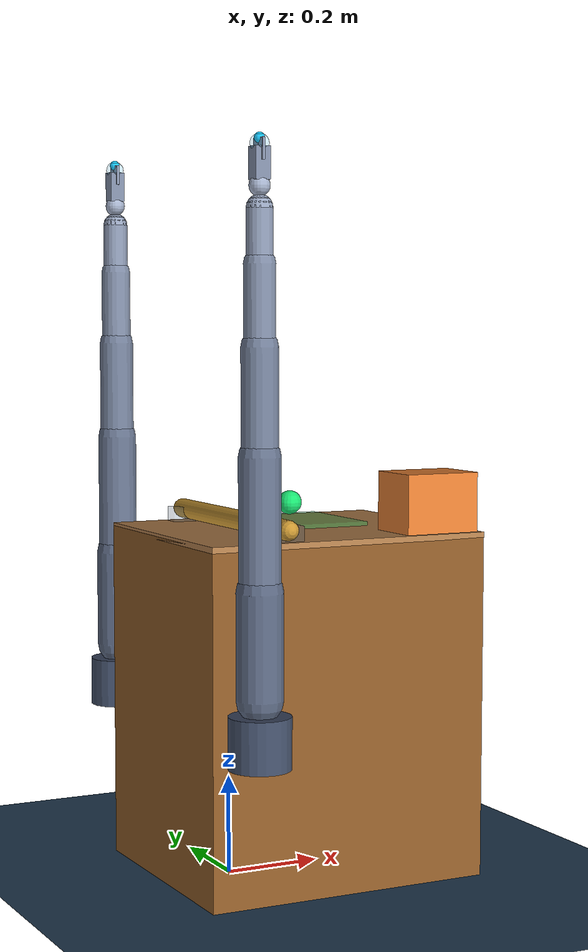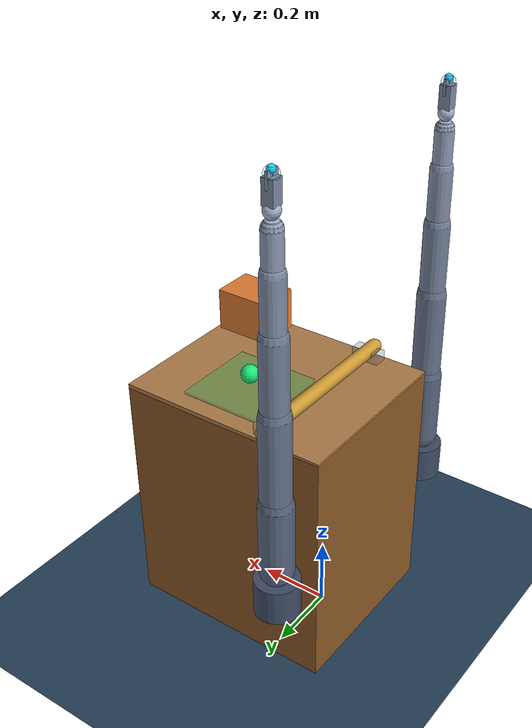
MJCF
<mujoco model="dual_arm_scene">
  <compiler angle="radian"/>

  <option timestep="0.002" gravity="0 0 -9.81" cone="elliptic" impratio="10" solver="Newton" iterations="100">
    <flag contact="enable"/>
  </option>

  <statistic center="0.3 0 0.9" extent="2.0" meansize="0.05"/>

  <visual>
    <global offwidth="640" offheight="480"/>
    <headlight diffuse="0.5 0.5 0.5" ambient="0.3 0.3 0.3" specular="0 0 0"/>
    <quality shadowsize="2048"/>
    <rgba haze="0.1 0.2 0.3 1"/>
  </visual>

  <asset>
    <texture type="skybox" builtin="gradient" rgb1="0.35 0.55 0.75" rgb2="0 0 0" width="512" height="3072"/>
    <texture type="2d" name="groundplane" builtin="checker" mark="edge" rgb1="0.2 0.3 0.4" rgb2="0.1 0.2 0.3" markrgb="0.8 0.8 0.8" width="300" height="300"/>
    <material name="groundplane" texture="groundplane" texuniform="true" texrepeat="5 5" reflectance="0.2"/>
  </asset>

  <worldbody>
    <!-- Two lights for even illumination -->
    <light name="overhead" directional="true" pos="0.3 0 3" dir="0 0 -1" diffuse="0.4 0.4 0.4"/>
    <light name="key" directional="true" pos="0 2 3" dir="0 -0.5 -1" diffuse="0.7 0.7 0.7"/>

    <!-- Floor -->
    <geom name="floor" type="plane" size="2 2 0.01" material="groundplane"/>

    <!-- Work table -->
    <body name="table" pos="0.15 0 0">
      <geom type="box" size="0.3 0.25 0.35" pos="0 0 0.35" rgba="0.55 0.35 0.15 1"/>
      <geom type="box" size="0.3 0.25 0.006" pos="0 0 0.70" rgba="0.7 0.5 0.3 1"/>
    </body>

    <!-- Overhead camera -->
    <body name="cam_mount" pos="0.0 0.75 1.7">
      <camera name="scene_camera" fovy="70" resolution="640 480" quat="0.00000000 -0.00000000 0.28845087 0.95749470"/>
    </body>

    <!-- Left arm (7-DoF) -->
    <body name="l_base" pos="-0.1 0.35 0.35">
      <geom type="cylinder" size="0.06 0.05" rgba="0.25 0.3 0.4 1"/>
      <body name="l_link1" pos="0 0 0.08">
        <joint name="l_j1" type="hinge" axis="0 0 1" range="-2.74 2.74" damping="2.0" armature="0.02"/>
        <geom type="capsule" size="0.045" fromto="0 0 0 0 0 0.20" rgba="0.35 0.4 0.5 1"/>
        <body name="l_link2" pos="0 0 0.20">
          <joint name="l_j2" type="hinge" axis="0 1 0" range="-1.78 1.78" damping="2.0" armature="0.02"/>
          <geom type="capsule" size="0.04" fromto="0 0 0 0 0 0.25" rgba="0.4 0.45 0.55 1"/>
          <body name="l_link3" pos="0 0 0.25">
            <joint name="l_j3" type="hinge" axis="0 0 1" range="-2.90 2.90" damping="2.0" armature="0.02"/>
            <geom type="capsule" size="0.035" fromto="0 0 0 0 0 0.20" rgba="0.45 0.5 0.6 1"/>
            <body name="l_link4" pos="0 0 0.20">
              <joint name="l_j4" type="hinge" axis="0 1 0" range="-3.04 -0.15" damping="2.0" armature="0.02"/>
              <geom type="capsule" size="0.03" fromto="0 0 0 0 0 0.15" rgba="0.5 0.55 0.65 1"/>
              <body name="l_link5" pos="0 0 0.15">
                <joint name="l_j5" type="hinge" axis="0 0 1" range="-2.80 2.80" damping="2.0" armature="0.02"/>
                <geom type="capsule" size="0.025" fromto="0 0 0 0 0 0.10" rgba="0.55 0.6 0.7 1"/>
                <body name="l_link6" pos="0 0 0.10">
                  <joint name="l_j6" type="hinge" axis="0 1 0" range="0.54 4.52" damping="2.0" armature="0.02"/>
                  <geom type="sphere" size="0.025" rgba="0.6 0.65 0.75 1"/>
                  <body name="l_link7" pos="0 0 0.04">
                    <joint name="l_j7" type="hinge" axis="0 0 1" range="-3.01 3.01" damping="2.0" armature="0.02"/>
                    <geom type="sphere" size="0.02" rgba="0.65 0.7 0.8 1"/>
                    <body name="l_gripper" pos="0 0 0.04">
                      <geom name="l_gripper_visual" type="box" size="0.015 0.015 0.03" rgba="0.5 0.55 0.65 1" contype="0" conaffinity="0"/>
                      <geom name="l_grasp_pad" type="sphere" pos="0 0 0.035" size="0.018" rgba="0.2 0.7 0.9 0.12" contype="0" conaffinity="0"/>
                      <body name="l_pinch" pos="0 0 0.045">
                        <site name="l_pinch_site" size="0.01" rgba="0.1 0.8 1 1"/>
                      </body>
                      <body name="l_finger_l" pos="0 0.01 0.025">
                        <joint name="l_grip_l" type="slide" axis="0 1 0" range="-0.015 0.015" damping="0.5" armature="0.005"/>
                        <geom type="box" size="0.003 0.008 0.02" rgba="0.55 0.6 0.7 1" condim="4" friction="0.95 0.3 0.1" solimp="0.998 0.998 0.001" solref="0.001 1"/>
                      </body>
                      <body name="l_finger_r" pos="0 -0.01 0.025">
                        <joint name="l_grip_r" type="slide" axis="0 1 0" range="-0.015 0.015" damping="0.5" armature="0.005"/>
                        <geom type="box" size="0.003 0.008 0.02" rgba="0.55 0.6 0.7 1" condim="4" friction="0.95 0.3 0.1" solimp="0.998 0.998 0.001" solref="0.001 1"/>
                      </body>
                    </body>
                  </body>
                </body>
              </body>
            </body>
          </body>
        </body>
      </body>
    </body>

    <!-- Right arm (7-DoF) -->
    <body name="r_base" pos="-0.1 -0.35 0.35">
      <geom type="cylinder" size="0.06 0.05" rgba="0.25 0.3 0.4 1"/>
      <body name="r_link1" pos="0 0 0.08">
        <joint name="r_j1" type="hinge" axis="0 0 1" range="-2.74 2.74" damping="2.0" armature="0.02"/>
        <geom type="capsule" size="0.045" fromto="0 0 0 0 0 0.20" rgba="0.35 0.4 0.5 1"/>
        <body name="r_link2" pos="0 0 0.20">
          <joint name="r_j2" type="hinge" axis="0 1 0" range="-1.78 1.78" damping="2.0" armature="0.02"/>
          <geom type="capsule" size="0.04" fromto="0 0 0 0 0 0.25" rgba="0.4 0.45 0.55 1"/>
          <body name="r_link3" pos="0 0 0.25">
            <joint name="r_j3" type="hinge" axis="0 0 1" range="-2.90 2.90" damping="2.0" armature="0.02"/>
            <geom type="capsule" size="0.035" fromto="0 0 0 0 0 0.20" rgba="0.45 0.5 0.6 1"/>
            <body name="r_link4" pos="0 0 0.20">
              <joint name="r_j4" type="hinge" axis="0 1 0" range="-3.04 -0.15" damping="2.0" armature="0.02"/>
              <geom type="capsule" size="0.03" fromto="0 0 0 0 0 0.15" rgba="0.5 0.55 0.65 1"/>
              <body name="r_link5" pos="0 0 0.15">
                <joint name="r_j5" type="hinge" axis="0 0 1" range="-2.80 2.80" damping="2.0" armature="0.02"/>
                <geom type="capsule" size="0.025" fromto="0 0 0 0 0 0.10" rgba="0.55 0.6 0.7 1"/>
                <body name="r_link6" pos="0 0 0.10">
                  <joint name="r_j6" type="hinge" axis="0 1 0" range="0.54 4.52" damping="2.0" armature="0.02"/>
                  <geom type="sphere" size="0.025" rgba="0.6 0.65 0.75 1"/>
                  <body name="r_link7" pos="0 0 0.04">
                    <joint name="r_j7" type="hinge" axis="0 0 1" range="-3.01 3.01" damping="2.0" armature="0.02"/>
                    <geom type="sphere" size="0.02" rgba="0.65 0.7 0.8 1"/>
                    <body name="r_gripper" pos="0 0 0.04">
                      <geom name="r_gripper_visual" type="box" size="0.015 0.015 0.03" rgba="0.5 0.55 0.65 1" contype="0" conaffinity="0"/>
                      <geom name="r_grasp_pad" type="sphere" pos="0 0 0.035" size="0.018" rgba="0.2 0.7 0.9 0.12" contype="0" conaffinity="0"/>
                      <body name="r_pinch" pos="0 0 0.045">
                        <site name="r_pinch_site" size="0.01" rgba="0.1 0.8 1 1"/>
                      </body>
                      <body name="r_finger_l" pos="0 0.01 0.025">
                        <joint name="r_grip_l" type="slide" axis="0 1 0" range="-0.015 0.015" damping="0.5" armature="0.005"/>
                        <geom type="box" size="0.003 0.008 0.02" rgba="0.55 0.6 0.7 1" condim="4" friction="0.95 0.3 0.1" solimp="0.998 0.998 0.001" solref="0.001 1"/>
                      </body>
                      <body name="r_finger_r" pos="0 -0.01 0.025">
                        <joint name="r_grip_r" type="slide" axis="0 1 0" range="-0.015 0.015" damping="0.5" armature="0.005"/>
                        <geom type="box" size="0.003 0.008 0.02" rgba="0.55 0.6 0.7 1" condim="4" friction="0.95 0.3 0.1" solimp="0.998 0.998 0.001" solref="0.001 1"/>
                      </body>
                    </body>
                  </body>
                </body>
              </body>
            </body>
          </body>
        </body>
      </body>
    </body>

    <!-- Objects for dual-arm tasks -->
    <body name="long_rod" pos="0.01 0 0.73">
      <freejoint name="rod_joint"/>
      <geom type="capsule" size="0.02" fromto="0 -0.25 0 0 0.25 0" rgba="0.8 0.6 0.2 1" mass="0.35" condim="4" friction="2.0 0.02 0.001"/>
    </body>
    <body name="rod_support" pos="0.01 0 0">
      <geom name="rod_support_left" type="box" size="0.04 0.018 0.015" pos="0 0.22 0.721" rgba="0.25 0.35 0.45 0.25" contype="0" conaffinity="0"/>
      <geom name="rod_support_right" type="box" size="0.04 0.018 0.015" pos="0 -0.22 0.721" rgba="0.25 0.35 0.45 0.25" contype="0" conaffinity="0"/>
    </body>
    <body name="box_obj" pos="0.36 -0.18 0.766">
      <freejoint name="box_joint"/>
      <geom type="box" size="0.08 0.06 0.06" rgba="0.9 0.5 0.2 1" mass="0.3" condim="4" friction="2.0 0.02 0.001"/>
    </body>
    <body name="target_region" pos="0.18 0.08 0.714">
      <geom name="target_region_marker" type="box" size="0.12 0.12 0.004" pos="0 0 -0.004" rgba="0.1 0.75 0.35 0.35" contype="0" conaffinity="0"/>
      <site name="target_region_site" pos="0 0 0.035" size="0.025" rgba="0.1 0.9 0.45 1"/>
    </body>
  </worldbody>

  <actuator>
    <!-- Left arm -->
    <motor name="ml_j1" joint="l_j1" ctrllimited="true" ctrlrange="-80 80"/>
    <motor name="ml_j2" joint="l_j2" ctrllimited="true" ctrlrange="-80 80"/>
    <motor name="ml_j3" joint="l_j3" ctrllimited="true" ctrlrange="-80 80"/>
    <motor name="ml_j4" joint="l_j4" ctrllimited="true" ctrlrange="-80 80"/>
    <motor name="ml_j5" joint="l_j5" ctrllimited="true" ctrlrange="-80 80"/>
    <motor name="ml_j6" joint="l_j6" ctrllimited="true" ctrlrange="-80 80"/>
    <motor name="ml_j7" joint="l_j7" ctrllimited="true" ctrlrange="-80 80"/>
    <position name="ml_grip" joint="l_grip_l" kp="25" ctrllimited="true" ctrlrange="-0.015 0.015"/>
    <!-- Right arm -->
    <motor name="mr_j1" joint="r_j1" ctrllimited="true" ctrlrange="-80 80"/>
    <motor name="mr_j2" joint="r_j2" ctrllimited="true" ctrlrange="-80 80"/>
    <motor name="mr_j3" joint="r_j3" ctrllimited="true" ctrlrange="-80 80"/>
    <motor name="mr_j4" joint="r_j4" ctrllimited="true" ctrlrange="-80 80"/>
    <motor name="mr_j5" joint="r_j5" ctrllimited="true" ctrlrange="-80 80"/>
    <motor name="mr_j6" joint="r_j6" ctrllimited="true" ctrlrange="-80 80"/>
    <motor name="mr_j7" joint="r_j7" ctrllimited="true" ctrlrange="-80 80"/>
    <position name="mr_grip" joint="r_grip_l" kp="25" ctrllimited="true" ctrlrange="-0.015 0.015"/>
  </actuator>

  <!-- Grip sync: left+right fingers move together -->
  <equality>
    <joint name="l_grip_sync" joint1="l_grip_l" joint2="l_grip_r" polycoef="0 -1 0 0 0"/>
    <joint name="r_grip_sync" joint1="r_grip_l" joint2="r_grip_r" polycoef="0 -1 0 0 0"/>
  </equality>

  <!-- Grasp weld constraints (initially inactive, activated at runtime) -->
  <equality>
    <weld name="grasp_left" body1="l_pinch" body2="long_rod"
          active="false" torquescale="50" solref="0.001 1" solimp="0.999 0.999 0.001"/>
    <weld name="grasp_right" body1="r_pinch" body2="long_rod"
          active="false" torquescale="50" solref="0.001 1" solimp="0.999 0.999 0.001"/>
  </equality>

  <!-- Exclude arm-arm self-collisions for dual-arm stability -->
  <contact>
    <exclude name="arm_arm" body1="l_link1" body2="r_link1"/>
    <exclude name="l_base_link1" body1="l_base" body2="l_link1"/>
    <exclude name="r_base_link1" body1="r_base" body2="r_link1"/>
    <exclude name="l_gripper_link2" body1="l_gripper" body2="l_link2"/>
    <exclude name="l_gripper_link5" body1="l_gripper" body2="l_link5"/>
    <exclude name="l_gripper_link7" body1="l_gripper" body2="l_link7"/>
    <exclude name="l_link6_link7" body1="l_link6" body2="l_link7"/>
    <exclude name="r_gripper_link2" body1="r_gripper" body2="r_link2"/>
    <exclude name="r_gripper_link5" body1="r_gripper" body2="r_link5"/>
    <exclude name="r_gripper_link7" body1="r_gripper" body2="r_link7"/>
    <exclude name="r_link6_link7" body1="r_link6" body2="r_link7"/>
  </contact>
</mujoco>
